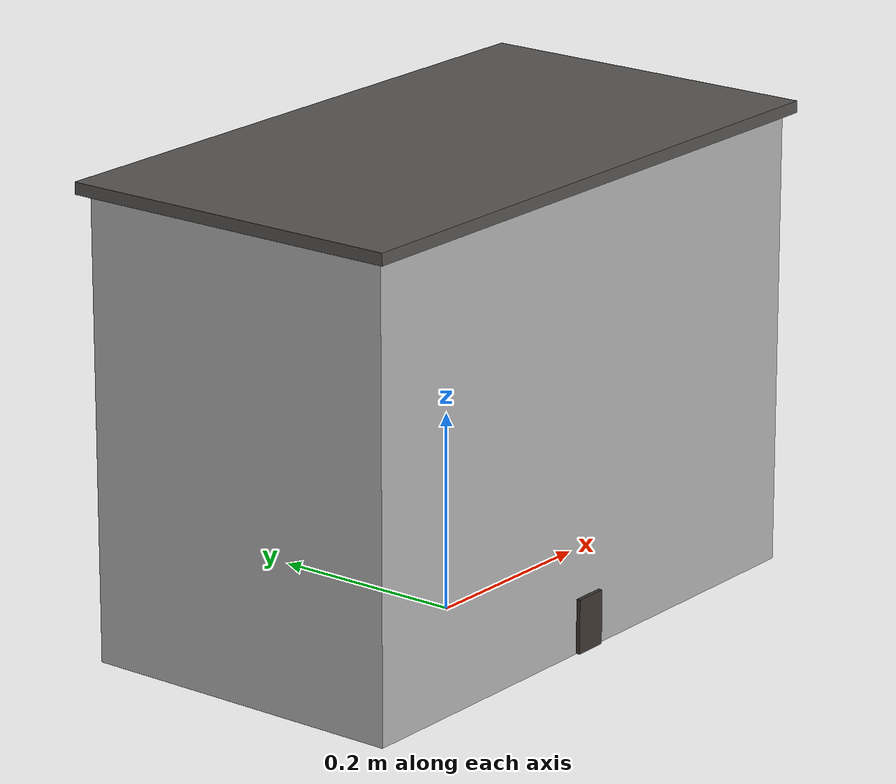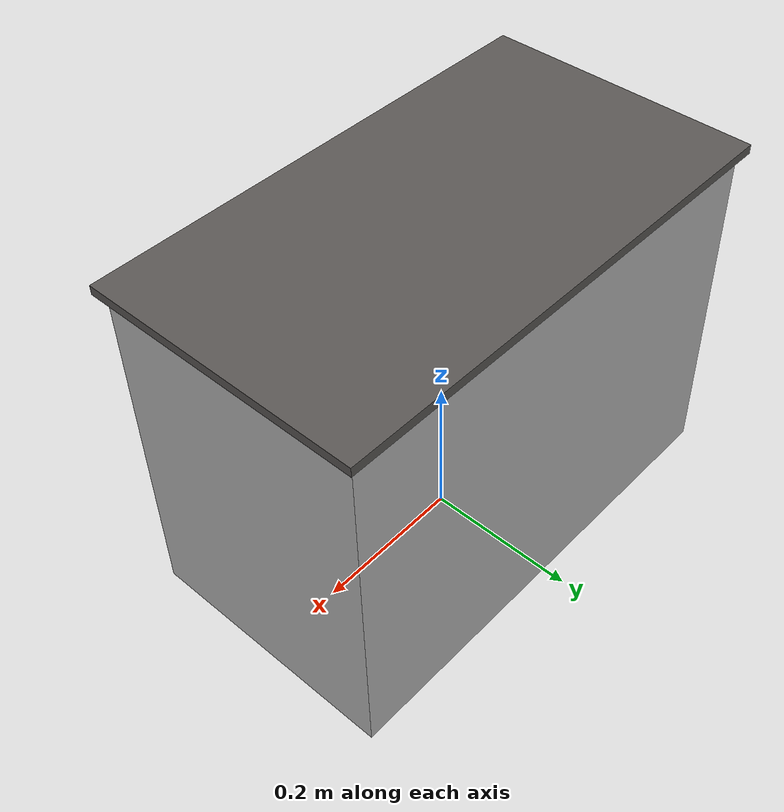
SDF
<?xml version="1.0"?>
<sdf version="1.7">
  <model name="bldg_a_fire">
    <static>true</static>
    <link name="link">
<visual name="mass"><pose>0 0 0.2300 0 0 0</pose><geometry><box><size>0.620 0.340 0.460</size></box></geometry><material><script><uri>model://bldg_a_fire/materials/scripts</uri><uri>model://bldg_a_fire/materials/textures</uri><name>BldgFire</name></script></material></visual>
      <collision name="mass_c_c"><pose>0 0 0.2300 0 0 0</pose><geometry><box><size>0.620 0.340 0.460</size></box></geometry></collision>
      <visual name="roof"><pose>0 0 0.4660 0 0 0</pose><geometry><box><size>0.640 0.360 0.012</size></box></geometry><material><ambient>0.35 0.34 0.33 1</ambient><diffuse>0.35 0.34 0.33 1</diffuse></material></visual>
      <visual name="door"><pose>0 -0.1720 0.0280 0 0 0</pose><geometry><box><size>0.035 0.004 0.055</size></box></geometry><material><ambient>0.25 0.22 0.20 1</ambient><diffuse>0.25 0.22 0.20 1</diffuse></material></visual>
    </link>
  </model>
</sdf>
